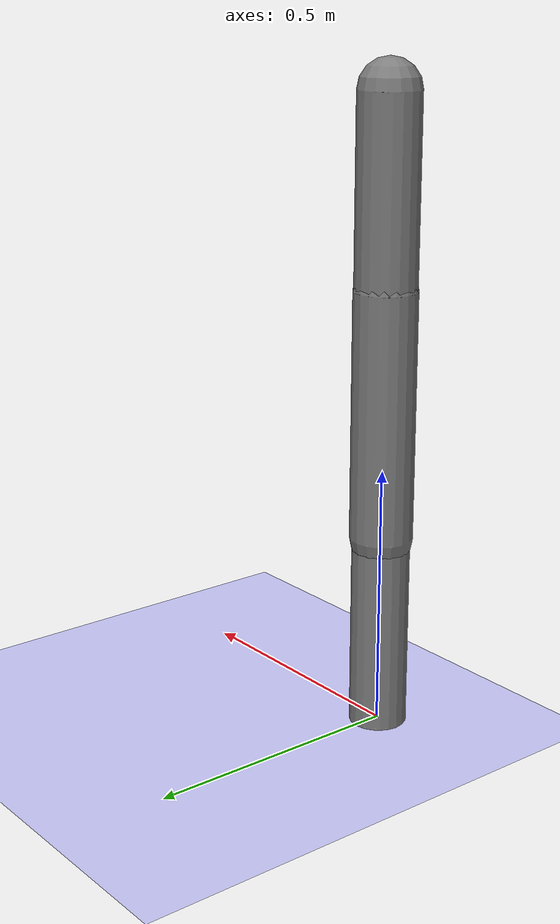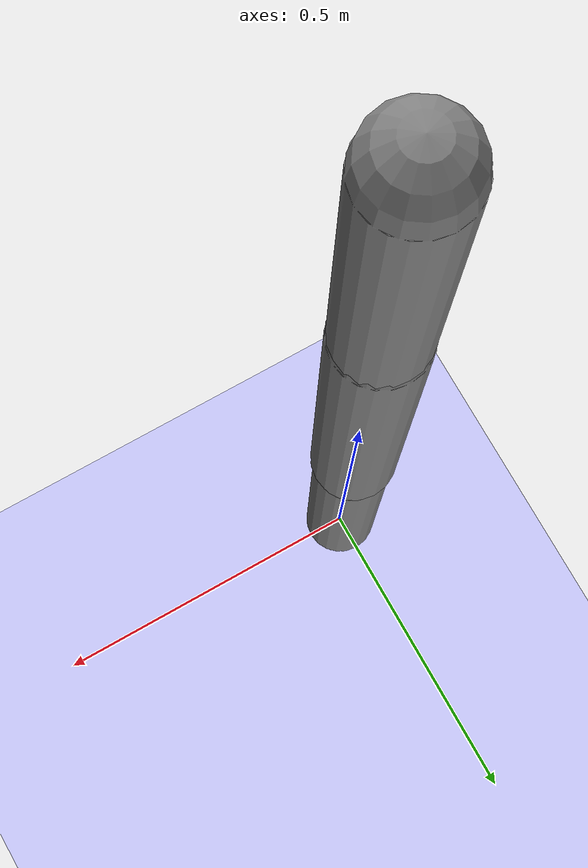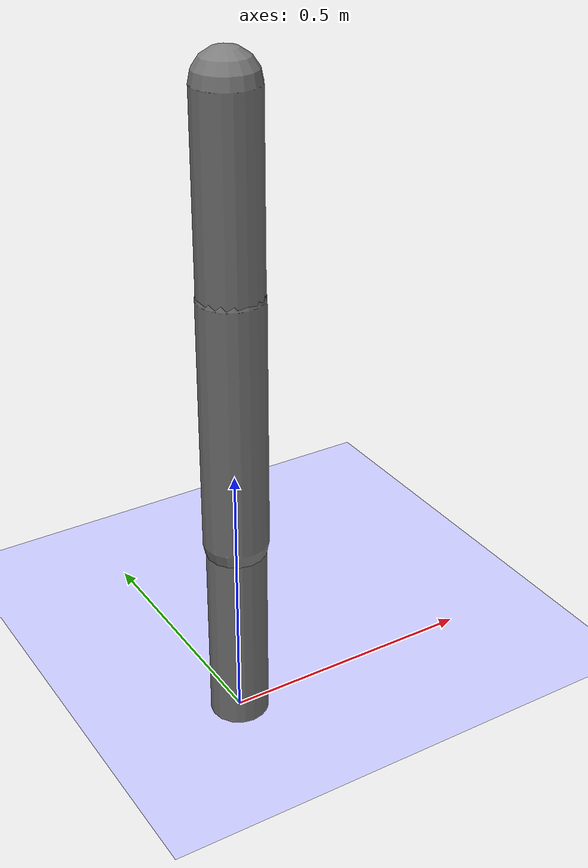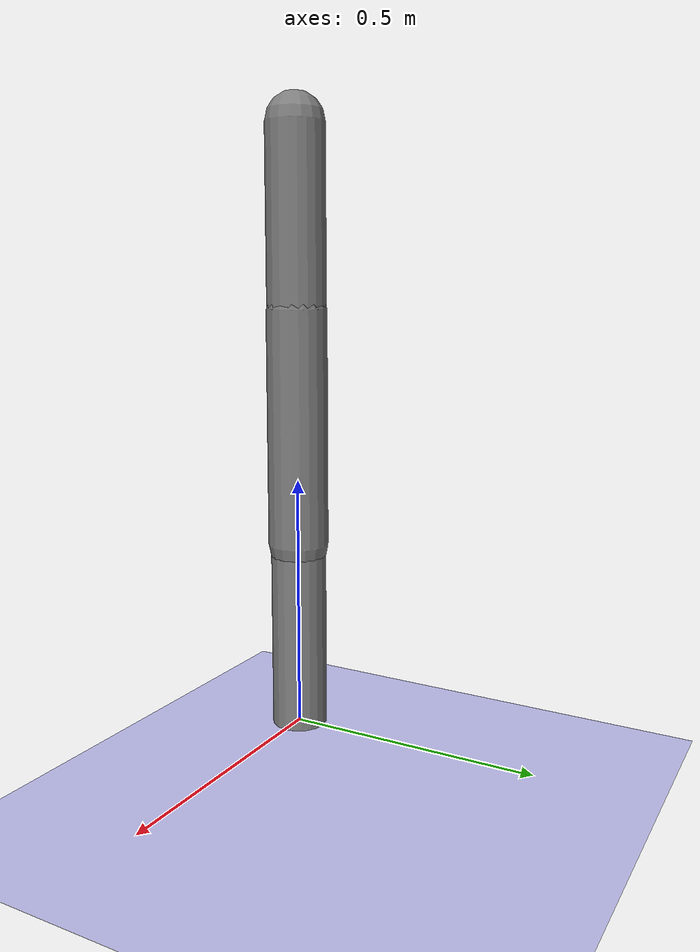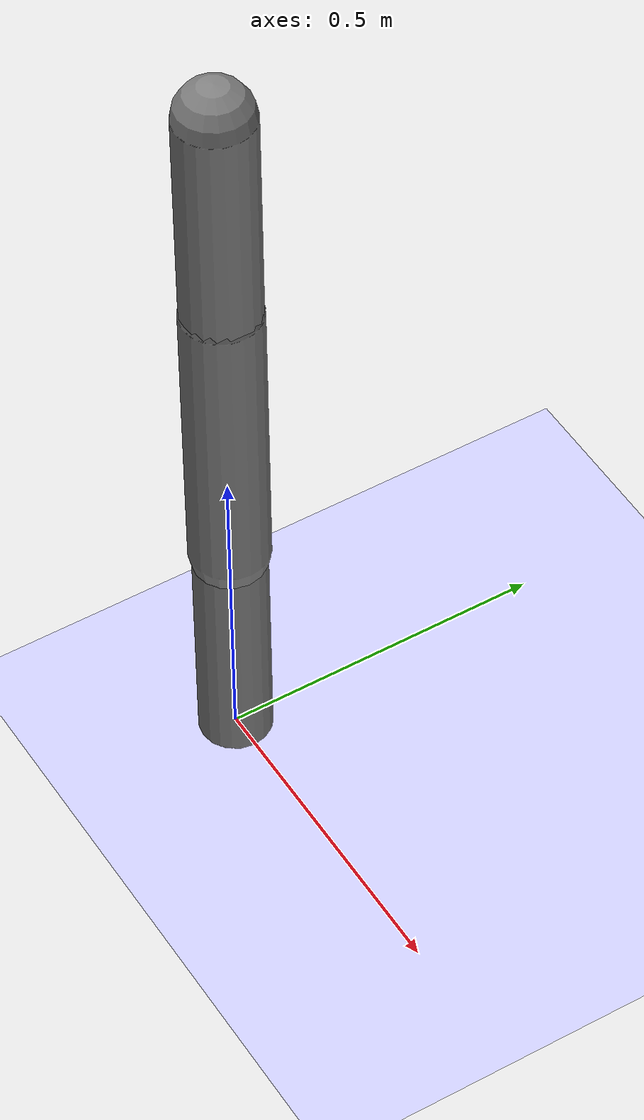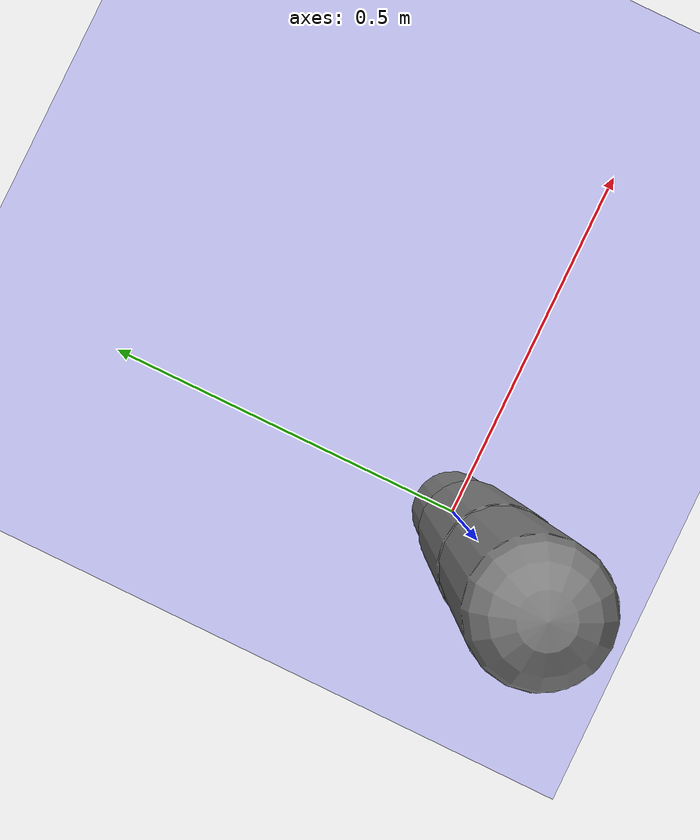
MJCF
<?xml version='1.0' encoding='UTF-8'?>
<mujoco model="robot_model">
  <worldbody>
    <light name="light" pos="0 -3 10" dir="0 0.5 -1" diffuse=".8 .8 .8" specular="0.1 0.1 0.1"/>
    <geom name="floor" type="plane" size="10.0 10.0 0.1" pos="0 0 0" rgba="0.8 0.8 1 1"/>
    <body name="limb0" pos="0 0 0">
      <geom type="capsule" fromto="0 0 0 0 0 0.3496137846629682" size="0.05476549533709073" density="771.4607902327883"/>
      <site type="sphere" size="0.01" name="limb0_site0" pos="0 0 0.26428656944778844"/>
      <site type="sphere" size="0.01" name="limb0_site1" pos="0 0 0.06077272671044927"/>
      <freejoint name="limb0_root"/>
      <body name="limb1" pos="0 0 0.26428656944778844">
        <geom type="capsule" fromto="0 0 0 0 0 0.3600789675341075" size="0.05407429494422454" density="619.3655655626594"/>
        <site type="sphere" size="0.01" name="limb1_site0" pos="0 0 0.14348370626259008"/>
        <body name="limb2" pos="0 0 0.14348370626259008">
          <geom type="capsule" fromto="0 0 0 0 0 0.10581665254440775" size="0.05348785395614184" density="974.5770120745345"/>
          <site type="sphere" size="0.01" name="limb2_site0" pos="0 0 0.09083760987558298"/>
          <body name="limb3" pos="0 0 0.09083760987558298">
            <geom type="capsule" fromto="0 0 0 0 0 0.3246346816300574" size="0.027985800535247497" density="877.8764988614424"/>
            <site type="sphere" size="0.01" name="limb3_site0" pos="0 0 0.30592291138675143"/>
            <body name="limb4" pos="0 0 0.30592291138675143">
              <geom type="capsule" fromto="0 0 0 0 0 0.38664313349290746" size="0.05825338637690475" density="1129.6842087872121"/>
              <joint name="joint_limb3_limb4_0" type="hinge" axis="0 0 1" range="-37.08281738214872 37.08281738214872" damping="5.0"/>
            </body>
            <joint name="joint_limb2_limb3_0" type="hinge" axis="1 0 0" range="-102.98912811609488 102.98912811609488" damping="5.0"/>
          </body>
          <joint name="joint_limb1_limb2_0" type="hinge" axis="1 0 0" range="-42.57355142917054 42.57355142917054" damping="5.0"/>
        </body>
        <joint name="joint_limb0_limb1_0" type="hinge" axis="0 1 0" range="-98.79908067877027 98.79908067877027" damping="5.0"/>
      </body>
      <body name="limb5" pos="0 0 0.06077272671044927">
        <geom type="capsule" fromto="0 0 0 0 0 0.20848267310478638" size="0.044649670011882046" density="708.121859381018"/>
        <site type="sphere" size="0.01" name="limb5_site0" pos="0 0 0.03374153100757649"/>
        <site type="sphere" size="0.01" name="limb5_site1" pos="0 0 0.15308942677993284"/>
        <body name="limb6" pos="0 0 0.03374153100757649">
          <geom type="capsule" fromto="0 0 0 0 0 0.46601789185969855" size="0.03490118038280599" density="681.9408630374036"/>
          <site type="sphere" size="0.01" name="limb6_site0" pos="0 0 0.45997519796104097"/>
          <body name="limb7" pos="0 0 0.45997519796104097">
            <geom type="capsule" fromto="0 0 0 0 0 0.17987090326120395" size="0.045840603195653064" density="427.52554854241964"/>
            <site type="sphere" size="0.01" name="limb7_site0" pos="0 0 0.13622738925839864"/>
            <body name="limb8" pos="0 0 0.13622738925839864">
              <geom type="capsule" fromto="0 0 0 0 0 0.19891389615533042" size="0.030325208070064356" density="1018.0930803065299"/>
              <joint name="joint_limb7_limb8_0" type="hinge" axis="0 0 1" range="-104.59573439320407 104.59573439320407" damping="5.0"/>
            </body>
            <joint name="joint_limb6_limb7_0" type="hinge" axis="0 1 0" range="-101.06547323563865 101.06547323563865" damping="5.0"/>
          </body>
          <joint name="joint_limb5_limb6_0" type="hinge" axis="0 0 1" range="-98.208106043741 98.208106043741" damping="5.0"/>
        </body>
        <body name="limb9" pos="0 0 0.15308942677993284">
          <geom type="capsule" fromto="0 0 0 0 0 0.19399130125080788" size="0.050904541369136115" density="542.378727428834"/>
          <site type="sphere" size="0.01" name="limb9_site0" pos="0 0 0.15798929136613127"/>
          <body name="limb10" pos="0 0 0.15798929136613127">
            <geom type="capsule" fromto="0 0 0 0 0 0.4676759956951593" size="0.05966738873335552" density="631.8729198528299"/>
            <joint name="joint_limb9_limb10_0" type="hinge" axis="1 0 0" range="-111.25459074536548 111.25459074536548" damping="5.0"/>
          </body>
          <joint name="joint_limb5_limb9_0" type="hinge" axis="1 0 0" range="-52.24607575631726 52.24607575631726" damping="5.0"/>
        </body>
        <joint name="joint_limb0_limb5_0" type="hinge" axis="0 0 1" range="-96.21716630603876 96.21716630603876" damping="5.0"/>
      </body>
    </body>
  </worldbody>
  <actuator>
    <position name="position_actuator_joint_limb0_limb1_0" joint="joint_limb0_limb1_0" gear="1.2720649148489427" inheritrange="1" kp="10.0"/>
    <position name="position_actuator_joint_limb1_limb2_0" joint="joint_limb1_limb2_0" gear="1.7759261162861084" inheritrange="1" kp="10.0"/>
    <position name="position_actuator_joint_limb2_limb3_0" joint="joint_limb2_limb3_0" gear="1.285844846340357" inheritrange="1" kp="10.0"/>
    <position name="position_actuator_joint_limb3_limb4_0" joint="joint_limb3_limb4_0" gear="0.5554259668121921" inheritrange="1" kp="10.0"/>
    <position name="position_actuator_joint_limb0_limb5_0" joint="joint_limb0_limb5_0" gear="1.7817465554683207" inheritrange="1" kp="10.0"/>
    <position name="position_actuator_joint_limb5_limb6_0" joint="joint_limb5_limb6_0" gear="0.9075785035297382" inheritrange="1" kp="10.0"/>
    <position name="position_actuator_joint_limb6_limb7_0" joint="joint_limb6_limb7_0" gear="0.7614126590878819" inheritrange="1" kp="10.0"/>
    <position name="position_actuator_joint_limb7_limb8_0" joint="joint_limb7_limb8_0" gear="0.7049780118299882" inheritrange="1" kp="10.0"/>
    <position name="position_actuator_joint_limb5_limb9_0" joint="joint_limb5_limb9_0" gear="0.732217334990693" inheritrange="1" kp="10.0"/>
    <position name="position_actuator_joint_limb9_limb10_0" joint="joint_limb9_limb10_0" gear="1.6619783528975058" inheritrange="1" kp="10.0"/>
  </actuator>
</mujoco>
